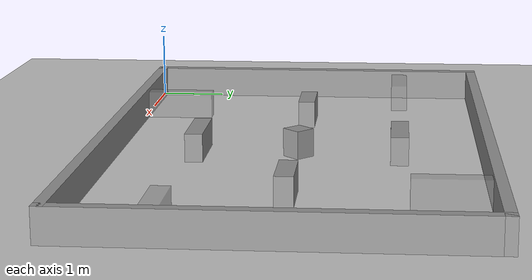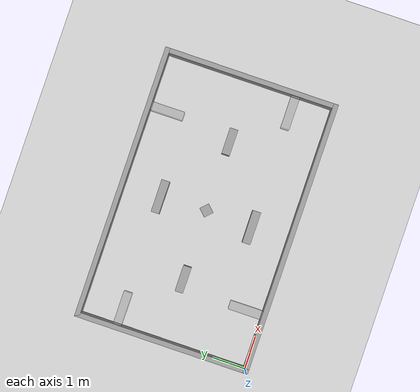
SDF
<sdf version="1.6">
 <world name="default">
  <light name="sun" type="directional">
   <pose>0 0 10 0 -0 0</pose>
   <diffuse>0.8 0.8 0.8 1</diffuse>
   <specular>0.1 0.1 0.1 1</specular>
   <attenuation>
    <range>1000</range>
    <constant>0.9</constant>
    <linear>0.01</linear>
    <quadratic>0.001</quadratic>
   </attenuation>
   <direction>-0.5 0.5 -1</direction>
  </light>
  <model name="ground_plane">
   <static>1</static>
   <link name="link">
    <collision name="collision">
     <geometry><plane><normal>0 0 1</normal><size>100 100</size></plane></geometry>
     <surface><friction><ode><mu>100</mu><mu2>50</mu2></ode></friction></surface>
    </collision>
    <visual name="visual">
     <cast_shadows>0</cast_shadows>
     <geometry><plane><normal>0 0 1</normal><size>100 100</size></plane></geometry>
     <material>
      <script><uri>file://media/materials/scripts/gazebo.material</uri><name>Gazebo/Grey</name></script>
     </material>
    </visual>
   </link>
  </model>
  <gravity>0 0 -9.8</gravity>
  <magnetic_field>6e-06 2.3e-05 -4.2e-05</magnetic_field>
  <atmosphere type="adiabatic"/>
  <physics name="default_physics" default="0" type="ode">
   <max_step_size>0.001</max_step_size>
   <real_time_factor>1</real_time_factor>
   <real_time_update_rate>1000</real_time_update_rate>
  </physics>
  <scene><ambient>0.4 0.4 0.4 1</ambient><background>0.7 0.7 0.7 1</background><shadows>1</shadows></scene>
  <spherical_coordinates>
   <surface_model>EARTH_WGS84</surface_model>
   <latitude_deg>0</latitude_deg>
   <longitude_deg>0</longitude_deg>
   <elevation>0</elevation>
   <heading_deg>0</heading_deg>
  </spherical_coordinates>
  <model name="2020map_originsize">
   <pose>4.125 2.61211 0 0 -0 0</pose>
   <link name="Wall_0">
    <collision name="Wall_0_Collision">
     <geometry><box><size>5.4 0.15 0.46</size></box></geometry>
     <pose>0 0 0.23 0 -0 0</pose>
    </collision>
    <visual name="Wall_0_Visual">
     <pose>0 0 0.23 0 -0 0</pose>
     <geometry><box><size>5.4 0.15 0.46</size></box></geometry>
     <material>
      <script><uri>file://media/materials/scripts/gazebo.material</uri><name>Gazebo/Grey</name></script>
      <ambient>1 1 1 1</ambient>
     </material>
    </visual>
    <pose>-4.125 0 0 0 0 -1.5708</pose>
   </link>
   <link name="Wall_1">
    <collision name="Wall_1_Collision">
     <geometry><box><size>8.4 0.15 0.46</size></box></geometry>
     <pose>0 0 0.23 0 -0 0</pose>
    </collision>
    <visual name="Wall_1_Visual">
     <pose>0 0 0.23 0 -0 0</pose>
     <geometry><box><size>8.4 0.15 0.46</size></box></geometry>
     <material>
      <script><uri>file://media/materials/scripts/gazebo.material</uri><name>Gazebo/Grey</name></script>
      <ambient>1 1 1 1</ambient>
     </material>
    </visual>
    <pose>0 -2.625 0 0 -0 0</pose>
   </link>
   <link name="Wall_11">
    <collision name="Wall_11_Collision">
     <geometry><box><size>1 0.25 0.4</size></box></geometry>
     <pose>0 0 0.2 0 -0 0</pose>
    </collision>
    <visual name="Wall_11_Visual">
     <pose>0 0 0.2 0 -0 0</pose>
     <geometry><box><size>1 0.25 0.4</size></box></geometry>
     <material>
      <script><uri>file://media/materials/scripts/gazebo.material</uri><name>Gazebo/GreyTransparent</name></script>
      <ambient>1 1 1 1</ambient>
     </material>
    </visual>
    <pose>-2.425 -2.05 0 0 -0 1.5708</pose>
   </link>
   <link name="Wall_13">
    <collision name="Wall_13_Collision">
     <geometry><box><size>1 0.25 0.4</size></box></geometry>
     <pose>0 0 0.2 0 -0 0</pose>
    </collision>
    <visual name="Wall_13_Visual">
     <pose>0 0 0.2 0 -0 0</pose>
     <geometry><box><size>1 0.25 0.4</size></box></geometry>
     <material>
      <script><uri>file://media/materials/scripts/gazebo.material</uri><name>Gazebo/Grey</name></script>
      <ambient>1 1 1 1</ambient>
     </material>
    </visual>
    <pose>-0.05 1.425 0 0 -0 0</pose>
   </link>
   <link name="Wall_15">
    <collision name="Wall_15_Collision">
     <geometry><box><size>1 0.25 0.4</size></box></geometry>
     <pose>0 0 0.2 0 -0 0</pose>
    </collision>
    <visual name="Wall_15_Visual">
     <pose>0 0 0.2 0 -0 0</pose>
     <geometry><box><size>1 0.25 0.4</size></box></geometry>
     <material>
      <script><uri>file://media/materials/scripts/gazebo.material</uri><name>Gazebo/Grey</name></script>
      <ambient>1 1 1 1</ambient>
     </material>
    </visual>
    <pose>-0.05 -1.425 0 0 -0 0</pose>
   </link>
   <link name="Wall_17">
    <collision name="Wall_17_Collision">
     <geometry><box><size>0.8 0.25 0.4</size></box></geometry>
     <pose>0 0 0.2 0 -0 0</pose>
    </collision>
    <visual name="Wall_17_Visual">
     <pose>0 0 0.2 0 -0 0</pose>
     <geometry><box><size>0.8 0.25 0.4</size></box></geometry>
     <material>
      <script><uri>file://media/materials/scripts/gazebo.material</uri><name>Gazebo/Grey</name></script>
      <ambient>1 1 1 1</ambient>
     </material>
    </visual>
    <pose>-2.15 0 0 0 -0 0</pose>
   </link>
   <link name="Wall_19">
    <collision name="Wall_19_Collision">
     <geometry><box><size>0.8 0.25 0.4</size></box></geometry>
     <pose>0 0 0.2 0 -0 0</pose>
    </collision>
    <visual name="Wall_19_Visual">
     <pose>0 0 0.2 0 -0 0</pose>
     <geometry><box><size>0.8 0.25 0.4</size></box></geometry>
     <material>
      <script><uri>file://media/materials/scripts/gazebo.material</uri><name>Gazebo/Grey</name></script>
      <ambient>1 1 1 1</ambient>
     </material>
    </visual>
    <pose>2.15 0 0 0 -0 0</pose>
   </link>
   <link name="Wall_2">
    <collision name="Wall_2_Collision">
     <geometry><box><size>5.4 0.15 0.46</size></box></geometry>
     <pose>0 0 0.23 0 -0 0</pose>
    </collision>
    <visual name="Wall_2_Visual">
     <pose>0 0 0.23 0 -0 0</pose>
     <geometry><box><size>5.4 0.15 0.46</size></box></geometry>
     <material>
      <script><uri>file://media/materials/scripts/gazebo.material</uri><name>Gazebo/Grey</name></script>
      <ambient>1 1 1 1</ambient>
     </material>
    </visual>
    <pose>4.125 0 0 0 -0 1.5708</pose>
   </link>
   <link name="Wall_21">
    <collision name="Wall_21_Collision">
     <geometry><box><size>0.303364 0.3 0.4</size></box></geometry>
     <pose>0 0 0.2 0 -0 0</pose>
    </collision>
    <visual name="Wall_21_Visual">
     <pose>0 0 0.2 0 -0 0</pose>
     <geometry><box><size>0.303364 0.3 0.4</size></box></geometry>
     <material>
      <script><uri>file://media/materials/scripts/gazebo.material</uri><name>Gazebo/Grey</name></script>
      <ambient>1 1 1 1</ambient>
     </material>
    </visual>
    <pose>0.001 0.001 0 0 -0 0.785398</pose>
   </link>
   <link name="Wall_3">
    <collision name="Wall_3_Collision">
     <geometry><box><size>8.4 0.15 0.46</size></box></geometry>
     <pose>0 0 0.23 0 -0 0</pose>
    </collision>
    <visual name="Wall_3_Visual">
     <pose>0 0 0.23 0 -0 0</pose>
     <geometry><box><size>8.4 0.15 0.46</size></box></geometry>
     <material>
      <script><uri>file://media/materials/scripts/gazebo.material</uri><name>Gazebo/Grey</name></script>
      <ambient>1 1 1 1</ambient>
     </material>
    </visual>
    <pose>0 2.625 0 0 -0 3.14159</pose>
   </link>
   <link name="Wall_5">
    <collision name="Wall_5_Collision">
     <geometry><box><size>1 0.25 0.4</size></box></geometry>
     <pose>0 0 0.2 0 -0 0</pose>
    </collision>
    <visual name="Wall_5_Visual">
     <pose>0 0 0.2 0 -0 0</pose>
     <geometry><box><size>1 0.25 0.4</size></box></geometry>
     <material>
      <script><uri>file://media/materials/scripts/gazebo.material</uri><name>Gazebo/GreyTransparent</name></script>
      <ambient>1 1 1 1</ambient>
     </material>
    </visual>
    <pose>-3.55 1.425 0 0 -0 0</pose>
   </link>
   <link name="Wall_7">
    <collision name="Wall_7_Collision">
     <geometry><box><size>1 0.25 0.4</size></box></geometry>
     <pose>0 0 0.2 0 -0 0</pose>
    </collision>
    <visual name="Wall_7_Visual">
     <pose>0 0 0.2 0 -0 0</pose>
     <geometry><box><size>1 0.25 0.4</size></box></geometry>
     <material>
      <script><uri>file://media/materials/scripts/gazebo.material</uri><name>Gazebo/GreyTransparent</name></script>
      <ambient>1 1 1 1</ambient>
     </material>
    </visual>
    <pose>2.425 2.05 0 0 0 -1.5708</pose>
   </link>
   <link name="Wall_9">
    <collision name="Wall_9_Collision">
     <geometry><box><size>1 0.25 0.4</size></box></geometry>
     <pose>0 0 0.2 0 -0 0</pose>
    </collision>
    <visual name="Wall_9_Visual">
     <pose>0 0 0.2 0 -0 0</pose>
     <geometry><box><size>1 0.25 0.4</size></box></geometry>
     <material>
      <script><uri>file://media/materials/scripts/gazebo.material</uri><name>Gazebo/GreyTransparent</name></script>
      <ambient>1 1 1 1</ambient>
     </material>
    </visual>
    <pose>3.55 -1.425 0 0 -0 3.14159</pose>
   </link>
   <static>1</static>
  </model>
 </world>
</sdf>
